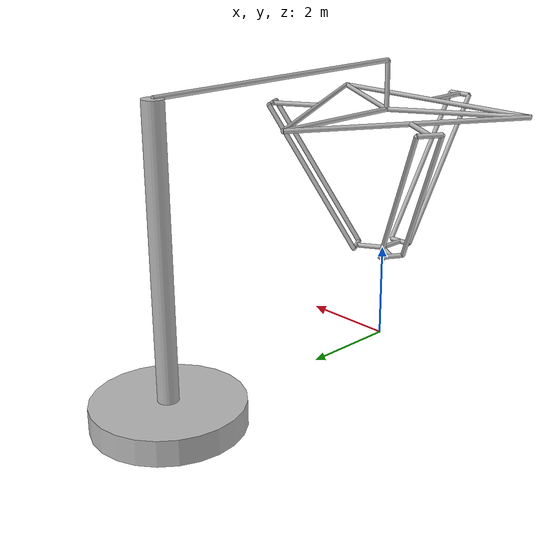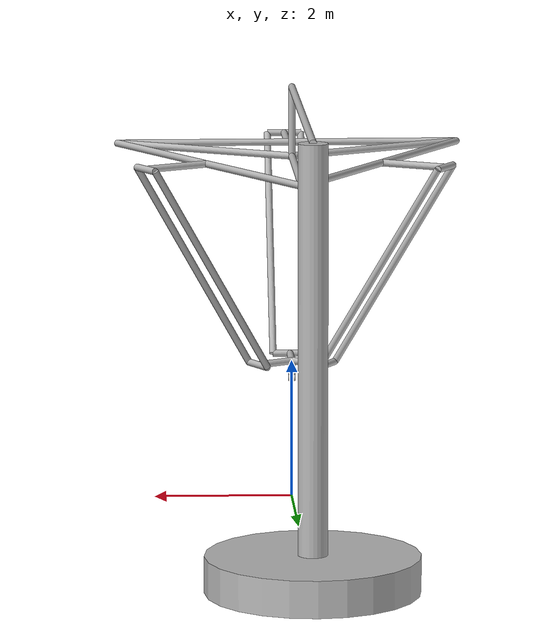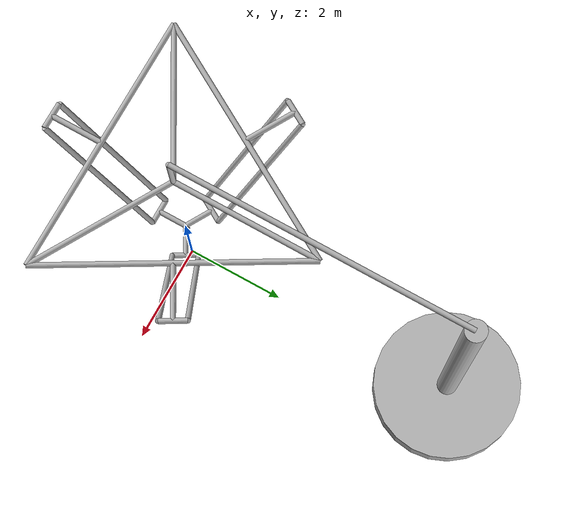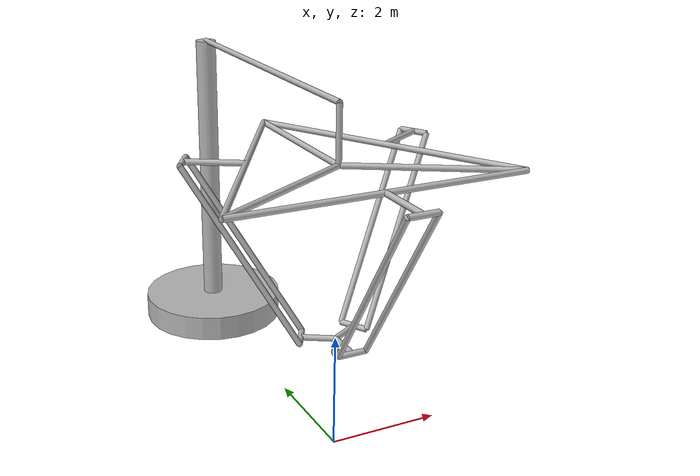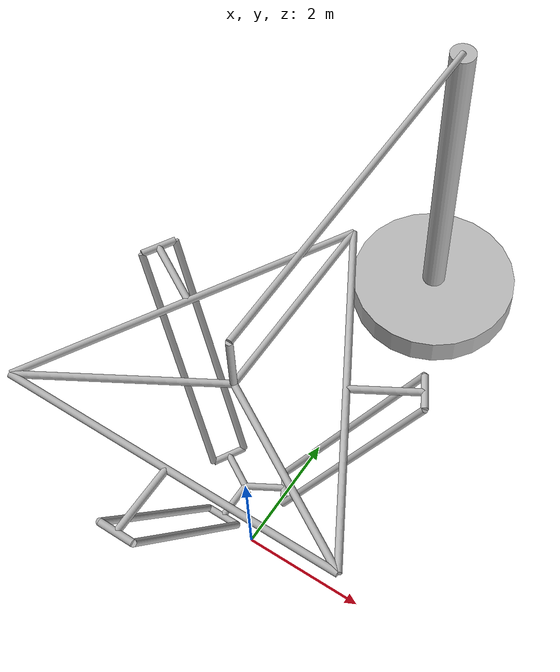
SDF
<?xml version="1.0" ?>
<sdf version="1.5">
<model name="delta3">
    <static>false</static>

    <joint name="fixed_to_ground" type="revolute">
        <parent>world</parent>
        <child>wall</child>
        <axis>
                            <xyz>0 1 0</xyz>
                            <limit>
                                <upper>0</upper>
                                <lower>0</lower>
                            </limit>
                        </axis>
  </joint>
    <link name="upper_side1">
        <pose>0.0 -1.4433756729740643 5.0 0.0 1.5707963267948966 0.0</pose>
        <gravity>0</gravity>
        <inertial>
            <mass>0.1</mass>
            <inertia>
                <ixx>0.0005</ixx>
                <iyy>0.0005</iyy>
                <izz>0.0005</izz>
            </inertia>
        </inertial>
        <collision name="col">
            <geometry>
                <cylinder>
                    <radius>0.05</radius>
                    <length>5</length>
                  </cylinder>
            </geometry>
        </collision>
        <visual name="visual">
            <geometry>
                <cylinder>
                    <radius>0.05</radius>
                    <length>5</length>
                </cylinder>
            </geometry>
          </visual>
    </link>

    <link name="upper_side2">
        <pose>1.25 0.7216878364870318 5.0 0.0 1.5707963267948966 2.0943951023931953</pose>
        <gravity>0</gravity>
        <inertial>
            <mass>0.1</mass>
            <inertia>
                <ixx>0.0005</ixx>
                <iyy>0.0005</iyy>
                <izz>0.0005</izz>
            </inertia>
        </inertial>
        <collision name="col">
            <geometry>
                <cylinder>
                    <radius>0.05</radius>
                    <length>5</length>
                  </cylinder>
            </geometry>
        </collision>
        <visual name="visual">
            <geometry>
                <cylinder>
                    <radius>0.05</radius>
                    <length>5</length>
                </cylinder>
            </geometry>
          </visual>
    </link>

    <link name="upper_side3">
        <pose>-1.25 0.7216878364870318 5.0 0.0 1.5707963267948966 -2.0943951023931953</pose>
        <gravity>0</gravity>
        <inertial>
            <mass>0.1</mass>
            <inertia>
                <ixx>0.0005</ixx>
                <iyy>0.0005</iyy>
                <izz>0.0005</izz>
            </inertia>
        </inertial>
        <collision name="col">
            <geometry>
                <cylinder>
                    <radius>0.05</radius>
                    <length>5</length>
                  </cylinder>
            </geometry>
        </collision>
        <visual name="visual">
            <geometry>
                <cylinder>
                    <radius>0.05</radius>
                    <length>5</length>
                </cylinder>
            </geometry>
          </visual>
    </link>

    <link name="upper_rib1">
        <pose>0.0 1.4433756729740643 5.0 0.0 1.5707963267948966 1.5707963267948966</pose>
        <gravity>0</gravity>
        <inertial>
            <mass>0.1</mass>
            <inertia>
                <ixx>0.0005</ixx>
                <iyy>0.0005</iyy>
                <izz>0.0005</izz>
            </inertia>
        </inertial>
        <collision name="col">
            <geometry>
                <cylinder>
                    <radius>0.05</radius>
                    <length>2.8867513459481287</length>
                  </cylinder>
            </geometry>
        </collision>
        <visual name="visual">
            <geometry>
                <cylinder>
                    <radius>0.05</radius>
                    <length>2.8867513459481287</length>
                </cylinder>
            </geometry>
          </visual>
    </link>

    <link name="upper_rib2">
        <pose>-1.25 -0.7216878364870318 5.0 0.0 1.5707963267948966 0.5235987755982988</pose>
        <gravity>0</gravity>
        <inertial>
            <mass>0.1</mass>
            <inertia>
                <ixx>0.0005</ixx>
                <iyy>0.0005</iyy>
                <izz>0.0005</izz>
            </inertia>
        </inertial>
        <collision name="col">
            <geometry>
                <cylinder>
                    <radius>0.05</radius>
                    <length>2.8867513459481287</length>
                  </cylinder>
            </geometry>
        </collision>
        <visual name="visual">
            <geometry>
                <cylinder>
                    <radius>0.05</radius>
                    <length>2.8867513459481287</length>
                </cylinder>
            </geometry>
          </visual>
    </link>

    <link name="upper_rib3">
        <pose>1.25 -0.7216878364870318 5.0 0.0 1.5707963267948966 -0.5235987755982988</pose>
        <gravity>0</gravity>
        <inertial>
            <mass>0.1</mass>
            <inertia>
                <ixx>0.0005</ixx>
                <iyy>0.0005</iyy>
                <izz>0.0005</izz>
            </inertia>
        </inertial>
        <collision name="col">
            <geometry>
                <cylinder>
                    <radius>0.05</radius>
                    <length>2.8867513459481287</length>
                  </cylinder>
            </geometry>
        </collision>
        <visual name="visual">
            <geometry>
                <cylinder>
                    <radius>0.05</radius>
                    <length>2.8867513459481287</length>
                </cylinder>
            </geometry>
          </visual>
    </link>

    <link name="upper_arm1">
        <pose>0.0 -1.9433756729740643 5.0 1.5707963267948966 1.5707963267948966 0.0</pose>
        <gravity>0</gravity>
        <inertial>
            <mass>0.01</mass>
            <inertia>
                <ixx>0.0005</ixx>
                <iyy>0.0005</iyy>
                <izz>0.0005</izz>
            </inertia>
        </inertial>
        <collision name="col">
            <geometry>
                <cylinder>
                    <radius>0.05</radius>
                    <length>1</length>
                  </cylinder>
            </geometry>
        </collision>
        <visual name="visual">
            <geometry>
                <cylinder>
                    <radius>0.05</radius>
                    <length>1</length>
                </cylinder>
            </geometry>
          </visual>
    </link>

    <link name="upper_arm2">
        <pose>1.6830127018922194 0.9716878364870317 5.0 1.5707963267948966 1.5707963267948966 2.0943951023931953</pose>
        <gravity>0</gravity>
        <inertial>
            <mass>0.01</mass>
            <inertia>
                <ixx>0.0005</ixx>
                <iyy>0.0005</iyy>
                <izz>0.0005</izz>
            </inertia>
        </inertial>
        <collision name="col">
            <geometry>
                <cylinder>
                    <radius>0.05</radius>
                    <length>1</length>
                  </cylinder>
            </geometry>
        </collision>
        <visual name="visual">
            <geometry>
                <cylinder>
                    <radius>0.05</radius>
                    <length>1</length>
                </cylinder>
            </geometry>
          </visual>
    </link>

    <link name="upper_arm3">
        <pose>-1.6830127018922194 0.9716878364870317 5.0 1.5707963267948966 1.5707963267948966 -2.0943951023931953</pose>
        <gravity>0</gravity>
        <inertial>
            <mass>0.01</mass>
            <inertia>
                <ixx>0.0005</ixx>
                <iyy>0.0005</iyy>
                <izz>0.0005</izz>
            </inertia>
        </inertial>
        <collision name="col">
            <geometry>
                <cylinder>
                    <radius>0.05</radius>
                    <length>1</length>
                  </cylinder>
            </geometry>
        </collision>
        <visual name="visual">
            <geometry>
                <cylinder>
                    <radius>0.05</radius>
                    <length>1</length>
                </cylinder>
            </geometry>
          </visual>
    </link>

    <link name="hor_upper_arm1">
        <pose>0.0 -2.4433756729740645 5.0 0.0 1.5707963267948966 0.0</pose>
        <gravity>0</gravity>
        <inertial>
            <mass>0.01</mass>
            <inertia>
                <ixx>0.0005</ixx>
                <iyy>0.0005</iyy>
                <izz>0.0005</izz>
            </inertia>
        </inertial>
        <collision name="col">
            <geometry>
                <cylinder>
                    <radius>0.05</radius>
                    <length>0.5</length>
                  </cylinder>
            </geometry>
        </collision>
        <visual name="visual">
            <geometry>
                <cylinder>
                    <radius>0.05</radius>
                    <length>0.5</length>
                </cylinder>
            </geometry>
          </visual>
    </link>

    <link name="hor_upper_arm2">
        <pose>2.116025403784439 1.2216878364870316 5.0 0.0 1.5707963267948966 2.0943951023931953</pose>
        <gravity>0</gravity>
        <inertial>
            <mass>0.01</mass>
            <inertia>
                <ixx>0.0005</ixx>
                <iyy>0.0005</iyy>
                <izz>0.0005</izz>
            </inertia>
        </inertial>
        <collision name="col">
            <geometry>
                <cylinder>
                    <radius>0.05</radius>
                    <length>0.5</length>
                  </cylinder>
            </geometry>
        </collision>
        <visual name="visual">
            <geometry>
                <cylinder>
                    <radius>0.05</radius>
                    <length>0.5</length>
                </cylinder>
            </geometry>
          </visual>
    </link>

    <link name="hor_upper_arm3">
        <pose>-2.116025403784439 1.2216878364870316 5.0 0.0 1.5707963267948966 -2.0943951023931953</pose>
        <gravity>0</gravity>
        <inertial>
            <mass>0.01</mass>
            <inertia>
                <ixx>0.0005</ixx>
                <iyy>0.0005</iyy>
                <izz>0.0005</izz>
            </inertia>
        </inertial>
        <collision name="col">
            <geometry>
                <cylinder>
                    <radius>0.05</radius>
                    <length>0.5</length>
                  </cylinder>
            </geometry>
        </collision>
        <visual name="visual">
            <geometry>
                <cylinder>
                    <radius>0.05</radius>
                    <length>0.5</length>
                </cylinder>
            </geometry>
          </visual>
    </link>

    <link name="lower_side1">
        <pose>0.0 -0.5773502691896257 2.0 0.0 1.5707963267948966 0.0</pose>
        <gravity>0</gravity>
        <inertial>
            <mass>0.01</mass>
            <inertia>
                <ixx>0.0005</ixx>
                <iyy>0.0005</iyy>
                <izz>0.0005</izz>
            </inertia>
        </inertial>
        <collision name="col">
            <geometry>
                <cylinder>
                    <radius>0.05</radius>
                    <length>0.5</length>
                  </cylinder>
            </geometry>
        </collision>
        <visual name="visual">
            <geometry>
                <cylinder>
                    <radius>0.05</radius>
                    <length>0.5</length>
                </cylinder>
            </geometry>
          </visual>
    </link>

    <link name="lower_side2">
        <pose>0.5 0.28867513459481275 2.0 0.0 1.5707963267948966 2.0943951023931953</pose>
        <gravity>0</gravity>
        <inertial>
            <mass>0.01</mass>
            <inertia>
                <ixx>0.0005</ixx>
                <iyy>0.0005</iyy>
                <izz>0.0005</izz>
            </inertia>
        </inertial>
        <collision name="col">
            <geometry>
                <cylinder>
                    <radius>0.05</radius>
                    <length>0.5</length>
                  </cylinder>
            </geometry>
        </collision>
        <visual name="visual">
            <geometry>
                <cylinder>
                    <radius>0.05</radius>
                    <length>0.5</length>
                </cylinder>
            </geometry>
          </visual>
    </link>

    <link name="lower_side3">
        <pose>-0.5 0.28867513459481275 2.0 0.0 1.5707963267948966 -2.0943951023931953</pose>
        <gravity>0</gravity>
        <inertial>
            <mass>0.01</mass>
            <inertia>
                <ixx>0.0005</ixx>
                <iyy>0.0005</iyy>
                <izz>0.0005</izz>
            </inertia>
        </inertial>
        <collision name="col">
            <geometry>
                <cylinder>
                    <radius>0.05</radius>
                    <length>0.5</length>
                  </cylinder>
            </geometry>
        </collision>
        <visual name="visual">
            <geometry>
                <cylinder>
                    <radius>0.05</radius>
                    <length>0.5</length>
                </cylinder>
            </geometry>
          </visual>
    </link>

    <link name="lower_rib1">
        <pose>0.0 -0.28867513459481287 2.0 1.5707963267948966 1.5707963267948966 0.0</pose>
        <gravity>0</gravity>
        <inertial>
            <mass>0.01</mass>
            <inertia>
                <ixx>0.0005</ixx>
                <iyy>0.0005</iyy>
                <izz>0.0005</izz>
            </inertia>
        </inertial>
        <collision name="col">
            <geometry>
                <cylinder>
                    <radius>0.05</radius>
                    <length>0.5773502691896257</length>
                  </cylinder>
            </geometry>
        </collision>
        <visual name="visual">
            <geometry>
                <cylinder>
                    <radius>0.05</radius>
                    <length>0.5773502691896257</length>
                </cylinder>
            </geometry>
          </visual>
    </link>

    <link name="lower_rib2">
        <pose>0.25 0.14433756729740638 2.0 1.5707963267948966 1.5707963267948966 2.0943951023931953</pose>
        <gravity>0</gravity>
        <inertial>
            <mass>0.01</mass>
            <inertia>
                <ixx>0.0005</ixx>
                <iyy>0.0005</iyy>
                <izz>0.0005</izz>
            </inertia>
        </inertial>
        <collision name="col">
            <geometry>
                <cylinder>
                    <radius>0.05</radius>
                    <length>0.5773502691896257</length>
                  </cylinder>
            </geometry>
        </collision>
        <visual name="visual">
            <geometry>
                <cylinder>
                    <radius>0.05</radius>
                    <length>0.5773502691896257</length>
                </cylinder>
            </geometry>
          </visual>
    </link>

    <link name="lower_rib3">
        <pose>-0.25 0.14433756729740638 2.0 1.5707963267948966 1.5707963267948966 -2.0943951023931953</pose>
        <gravity>0</gravity>
        <inertial>
            <mass>0.01</mass>
            <inertia>
                <ixx>0.0005</ixx>
                <iyy>0.0005</iyy>
                <izz>0.0005</izz>
            </inertia>
        </inertial>
        <collision name="col">
            <geometry>
                <cylinder>
                    <radius>0.05</radius>
                    <length>0.5773502691896257</length>
                  </cylinder>
            </geometry>
        </collision>
        <visual name="visual">
            <geometry>
                <cylinder>
                    <radius>0.05</radius>
                    <length>0.5773502691896257</length>
                </cylinder>
            </geometry>
          </visual>
    </link>

    <link name="vertical_arm1_left">
        <pose>0.25 -1.5103629710818451 3.5 0.556445208381 0.0 0.0</pose>
        <gravity>0</gravity>
        <inertial>
            <mass>0.01</mass>
            <inertia>
                <ixx>0.0005</ixx>
                <iyy>0.0005</iyy>
                <izz>0.0005</izz>
            </inertia>
        </inertial>
        <collision name="col">
            <geometry>
                <cylinder>
                    <radius>0.05</radius>
                    <length>3.532994594896641</length>
                  </cylinder>
            </geometry>
        </collision>
        <visual name="visual">
            <geometry>
                <cylinder>
                    <radius>0.05</radius>
                    <length>3.532994594896641</length>
                </cylinder>
            </geometry>
          </visual>
    </link>

    <link name="vertical_arm2_left">
        <pose>1.1830127018922194 0.9716878364870319 3.5 0.5564452083809998 0.0 2.0943951023931953</pose>
        <gravity>0</gravity>
        <inertial>
            <mass>0.01</mass>
            <inertia>
                <ixx>0.0005</ixx>
                <iyy>0.0005</iyy>
                <izz>0.0005</izz>
            </inertia>
        </inertial>
        <collision name="col">
            <geometry>
                <cylinder>
                    <radius>0.05</radius>
                    <length>3.532994594896641</length>
                  </cylinder>
            </geometry>
        </collision>
        <visual name="visual">
            <geometry>
                <cylinder>
                    <radius>0.05</radius>
                    <length>3.532994594896641</length>
                </cylinder>
            </geometry>
          </visual>
    </link>

    <link name="vertical_arm3_left">
        <pose>-1.4330127018922194 0.5386751345948126 3.5 0.5564452083809998 0.0 -2.0943951023931953</pose>
        <gravity>0</gravity>
        <inertial>
            <mass>0.01</mass>
            <inertia>
                <ixx>0.0005</ixx>
                <iyy>0.0005</iyy>
                <izz>0.0005</izz>
            </inertia>
        </inertial>
        <collision name="col">
            <geometry>
                <cylinder>
                    <radius>0.05</radius>
                    <length>3.532994594896641</length>
                  </cylinder>
            </geometry>
        </collision>
        <visual name="visual">
            <geometry>
                <cylinder>
                    <radius>0.05</radius>
                    <length>3.532994594896641</length>
                </cylinder>
            </geometry>
          </visual>
    </link>

    <link name="vertical_arm1_right">
        <pose>-0.25 -1.5103629710818451 3.5 0.556445208381 0.0 0.0</pose>
        <gravity>0</gravity>
        <inertial>
            <mass>0.01</mass>
            <inertia>
                <ixx>0.0005</ixx>
                <iyy>0.0005</iyy>
                <izz>0.0005</izz>
            </inertia>
        </inertial>
        <collision name="col">
            <geometry>
                <cylinder>
                    <radius>0.05</radius>
                    <length>3.532994594896641</length>
                  </cylinder>
            </geometry>
        </collision>
        <visual name="visual">
            <geometry>
                <cylinder>
                    <radius>0.05</radius>
                    <length>3.532994594896641</length>
                </cylinder>
            </geometry>
          </visual>
    </link>

    <link name="vertical_arm2_right">
        <pose>1.4330127018922194 0.5386751345948125 3.5 0.5564452083809998 0.0 2.0943951023931953</pose>
        <gravity>0</gravity>
        <inertial>
            <mass>0.01</mass>
            <inertia>
                <ixx>0.0005</ixx>
                <iyy>0.0005</iyy>
                <izz>0.0005</izz>
            </inertia>
        </inertial>
        <collision name="col">
            <geometry>
                <cylinder>
                    <radius>0.05</radius>
                    <length>3.532994594896641</length>
                  </cylinder>
            </geometry>
        </collision>
        <visual name="visual">
            <geometry>
                <cylinder>
                    <radius>0.05</radius>
                    <length>3.532994594896641</length>
                </cylinder>
            </geometry>
          </visual>
    </link>

    <link name="vertical_arm3_right">
        <pose>-1.1830127018922194 0.9716878364870318 3.5 0.5564452083809998 0.0 -2.0943951023931953</pose>
        <gravity>0</gravity>
        <inertial>
            <mass>0.01</mass>
            <inertia>
                <ixx>0.0005</ixx>
                <iyy>0.0005</iyy>
                <izz>0.0005</izz>
            </inertia>
        </inertial>
        <collision name="col">
            <geometry>
                <cylinder>
                    <radius>0.05</radius>
                    <length>3.532994594896641</length>
                  </cylinder>
            </geometry>
        </collision>
        <visual name="visual">
            <geometry>
                <cylinder>
                    <radius>0.05</radius>
                    <length>3.532994594896641</length>
                </cylinder>
            </geometry>
          </visual>
    </link>

    <link name="upper_triangle_holder">
        <pose>0 0 5.5 0 0 0</pose>
        <gravity>0</gravity>
        <inertial>
            <mass>0.1</mass>
            <inertia>
                <ixx>0.0005</ixx>
                <iyy>0.0005</iyy>
                <izz>0.0005</izz>
            </inertia>
        </inertial>
        <collision name="col">
            <geometry>
                <cylinder>
                    <radius>0.05</radius>
                    <length>1</length>
                  </cylinder>
            </geometry>
        </collision>
        <visual name="visual">
            <geometry>
                <cylinder>
                    <radius>0.05</radius>
                    <length>1</length>
                </cylinder>
            </geometry>
          </visual>
    </link>

    <link name="lower_triangle_holder">
        <pose>0 0 1.9 0 0 0</pose>
        <gravity>0</gravity>
        <inertial>
            <mass>0.01</mass>
            <inertia>
                <ixx>0.0005</ixx>
                <iyy>0.0005</iyy>
                <izz>0.0005</izz>
            </inertia>
        </inertial>
        <collision name="col">
            <geometry>
                <cylinder>
                    <radius>0.05</radius>
                    <length>0.2</length>
                  </cylinder>
            </geometry>
        </collision>
        <visual name="visual">
            <geometry>
                <cylinder>
                    <radius>0.05</radius>
                    <length>0.2</length>
                </cylinder>
            </geometry>
          </visual>
    </link>

    <link name="horizontal_holder">
        <pose>0 2.8867513459481287 6 1.5707963267948966 0 0</pose>
        <gravity>0</gravity>
        <inertial>
            <mass>0.1</mass>
            <inertia>
                <ixx>1.0</ixx>
                <iyy>1.0</iyy>
                <izz>1.0</izz>
            </inertia>
        </inertial>
        <collision name="col">
            <geometry>
                <cylinder>
                    <radius>0.05</radius>
                    <length>5.773502691896257</length>
                  </cylinder>
            </geometry>
        </collision>
        <visual name="visual">
            <geometry>
                <cylinder>
                    <radius>0.05</radius>
                    <length>5.773502691896257</length>
                </cylinder>
            </geometry>
          </visual>
    </link>

    <link name="wall">
        <pose>0 5.773502691896257 0.25 0 0 0</pose>
        <inertial>
            <mass>500</mass>
        </inertial>
        <collision name="col">
            <geometry>
                <cylinder>
                    <radius>1.4433756729740643</radius>
                    <length>0.5</length>
                  </cylinder>
            </geometry>
        </collision>
        <visual name="visual">
            <geometry>
                <cylinder>
                    <radius>1.4433756729740643</radius>
                    <length>0.5</length>
                </cylinder>
            </geometry>
          </visual>
    </link>

    <link name="main_holder">
        <pose>0 5.773502691896257 3.25 0 0 0</pose>
        <gravity>0</gravity>
        <inertial>
            <mass>0.1</mass>
            <inertia>
                <ixx>1.0</ixx>
                <iyy>1.0</iyy>
                <izz>1.0</izz>
            </inertia>
        </inertial>
        <collision name="col">
            <geometry>
                <cylinder>
                    <radius>0.2</radius>
                    <length>5.5</length>
                  </cylinder>
            </geometry>
        </collision>
        <visual name="visual">
            <geometry>
                <cylinder>
                    <radius>0.2</radius>
                    <length>5.5</length>
                </cylinder>
            </geometry>
          </visual>
    </link>

    <link name="camera_link">
        <inertial>
                <mass>0.01</mass>
                <inertia>
                    <ixx>0.0005</ixx>
                    <iyy>0.0005</iyy>
                    <izz>0.0005</izz>
                </inertia>
        </inertial>
        <pose>0 0 1.7499999999999998 0 1.5707963267948966 0</pose>
        <visual name="visual">
            <geometry>
                <cylinder>
                    <radius>0.05</radius>
                    <length>0.1</length>
                </cylinder>
            </geometry>
        </visual>
        <collision name="col">
            <geometry>
                <cylinder>
                    <radius>0.05</radius>
                    <length>0.1</length>
                </cylinder>
            </geometry>
        </collision>
        <sensor type="camera" name="camera1">
            <update_rate>30.0</update_rate>
            <camera name="head">
                <horizontal_fov>1.3962634</horizontal_fov>
                <image>
                    <width>800</width>
                    <height>800</height>
                    <format>R8G8B8</format>
                </image>
                <clip>
                    <near>0.02</near>
                    <far>10</far>
                </clip>
            </camera>
            <always_on>1</always_on>
            <visualize>1</visualize>
            <plugin name="camera_controller" filename="libgazebo_ros_camera.so">
                <alwaysOn>true</alwaysOn>
                <updateRate>0.0</updateRate>
                <cameraName>delta3/camera</cameraName>
                <imageTopicName>raw_image</imageTopicName>
                <cameraInfoTopicName>camera_info</cameraInfoTopicName>
                <frameName>camera_link</frameName>
            </plugin>
        </sensor>
    </link>
    <joint type="revolute" name="upper_s2_s1">
                    <pose>0 0 2.5 0 0 0</pose>
                    <child>upper_side2</child>
                    <parent>upper_side1</parent>
                        <axis>
                            <dynamics>
                                <friction>1.0</friction>
                                <damping>.1</damping>
                            </dynamics>
                            <xyz>0 0 1</xyz>
                            <limit>
                                <upper>0</upper>
                                <lower>0</lower>
                            </limit>
                        </axis>
			    </joint>
            <joint type="revolute" name="upper_s2_s3">
                    <pose>0 0 -2.5 0 0 0</pose>
                    <child>upper_side2</child>
                    <parent>upper_side3</parent>
                        <axis>
                            <dynamics>
                                <friction>1.0</friction>
                                <damping>.1</damping>
                            </dynamics>
                            <xyz>0 0 1</xyz>
                            <limit>
                                <upper>0</upper>
                                <lower>0</lower>
                            </limit>
                        </axis>
			    </joint>
            <joint type="revolute" name="upper_s3_s1">
                    <pose>0 0 2.5 0 0 0</pose>
                    <child>upper_side3</child>
                    <parent>upper_side1</parent>
                        <axis>
                            <dynamics>
                                <friction>1.0</friction>
                                <damping>.1</damping>
                            </dynamics>
                            <xyz>0 0 1</xyz>
                            <limit>
                                <upper>0</upper>
                                <lower>0</lower>
                            </limit>
                        </axis>
			    </joint>
            <joint type="revolute" name="upper_arm_a1_s1">
                    <pose>0 0 -0.5 0 0 0</pose>
                    <child>upper_arm1</child>
                    <parent>upper_side1</parent>
                        <axis>
                            <dynamics>
                                <friction>1.0</friction>
                                <damping>.1</damping>
                            </dynamics>
                            <xyz>0 1 0</xyz>
                            <limit>
                                <upper>1.5707963267948966</upper>
                                <lower>-1.5707963267948966</lower>
                            </limit>
                        </axis>
			    </joint>
            <joint type="revolute" name="upper_arm_a2_s2">
                    <pose>0 0 -0.5 0 0 0</pose>
                    <child>upper_arm2</child>
                    <parent>upper_side2</parent>
                        <axis>
                            <dynamics>
                                <friction>1.0</friction>
                                <damping>.1</damping>
                            </dynamics>
                            <xyz>0 1 0</xyz>
                            <limit>
                                <upper>1.5707963267948966</upper>
                                <lower>-1.5707963267948966</lower>
                            </limit>
                        </axis>
			    </joint>
            <joint type="revolute" name="upper_arm_a3_s3">
                    <pose>0 0 -0.5 0 0 0</pose>
                    <child>upper_arm3</child>
                    <parent>upper_side3</parent>
                        <axis>
                            <dynamics>
                                <friction>1.0</friction>
                                <damping>.1</damping>
                            </dynamics>
                            <xyz>0 1 0</xyz>
                            <limit>
                                <upper>1.5707963267948966</upper>
                                <lower>-1.5707963267948966</lower>
                            </limit>
                        </axis>
			    </joint>
            <joint type="revolute" name="upper_arm_hor_a1_s1">
                    <pose>0 0 0.5 0 0 0</pose>
                    <child>upper_arm1</child>
                    <parent>hor_upper_arm1</parent>
                        <axis>
                            <dynamics>
                                <friction>1.0</friction>
                                <damping>.1</damping>
                            </dynamics>
                            <xyz>0 1 0</xyz>
                            <limit>
                                <upper>1.5707963267948966</upper>
                                <lower>-1.5707963267948966</lower>
                            </limit>
                        </axis>
			    </joint>
            <joint type="revolute" name="upper_arm_hor_a2_s2">
                    <pose>0 0 0.5 0 0 0</pose>
                    <child>upper_arm2</child>
                    <parent>hor_upper_arm2</parent>
                        <axis>
                            <dynamics>
                                <friction>1.0</friction>
                                <damping>.1</damping>
                            </dynamics>
                            <xyz>0 1 0</xyz>
                            <limit>
                                <upper>1.5707963267948966</upper>
                                <lower>-1.5707963267948966</lower>
                            </limit>
                        </axis>
			    </joint>
            <joint type="revolute" name="upper_arm_hor_a3_s3">
                    <pose>0 0 0.5 0 0 0</pose>
                    <child>upper_arm3</child>
                    <parent>hor_upper_arm3</parent>
                        <axis>
                            <dynamics>
                                <friction>1.0</friction>
                                <damping>.1</damping>
                            </dynamics>
                            <xyz>0 1 0</xyz>
                            <limit>
                                <upper>1.5707963267948966</upper>
                                <lower>-1.5707963267948966</lower>
                            </limit>
                        </axis>
			    </joint>
            <joint type="ball" name="vertical_arm_a1_v1_right">
                    <pose>0 0 1.7664972974483204 0 0 0</pose>
                    <child>vertical_arm1_right</child>
                    <parent>hor_upper_arm1</parent>
                        <axis>
                            <dynamics>
                                <friction>1.0</friction>
                                <damping>.1</damping>
                            </dynamics>
                            <xyz>0 1 0</xyz>
                            <limit>
                                <upper>1.5707963267948966</upper>
                                <lower>-1.5707963267948966</lower>
                            </limit>
                        </axis>
			    </joint>
            <joint type="ball" name="vertical_arm_a2_v2_right">
                    <pose>0 0 1.7664972974483204 0 0 0</pose>
                    <child>vertical_arm2_right</child>
                    <parent>hor_upper_arm2</parent>
                        <axis>
                            <dynamics>
                                <friction>1.0</friction>
                                <damping>.1</damping>
                            </dynamics>
                            <xyz>0 1 0</xyz>
                            <limit>
                                <upper>1.5707963267948966</upper>
                                <lower>-1.5707963267948966</lower>
                            </limit>
                        </axis>
			    </joint>
            <joint type="ball" name="vertical_arm_a3_v3_right">
                    <pose>0 0 1.7664972974483204 0 0 0</pose>
                    <child>vertical_arm3_right</child>
                    <parent>hor_upper_arm3</parent>
                        <axis>
                            <dynamics>
                                <friction>1.0</friction>
                                <damping>.1</damping>
                            </dynamics>
                            <xyz>0 1 0</xyz>
                            <limit>
                                <upper>1.5707963267948966</upper>
                                <lower>-1.5707963267948966</lower>
                            </limit>
                        </axis>
			    </joint>
            <joint type="ball" name="vertical_arm_a1_v1_left">
                    <pose>0 0 1.7664972974483204 0 0 0</pose>
                    <child>vertical_arm1_left</child>
                    <parent>hor_upper_arm1</parent>
                        <axis>
                            <dynamics>
                                <friction>1.0</friction>
                                <damping>.1</damping>
                            </dynamics>
                            <xyz>0 1 0</xyz>
                            <limit>
                                <upper>1.5707963267948966</upper>
                                <lower>-1.5707963267948966</lower>
                            </limit>
                        </axis>
			    </joint>
            <joint type="ball" name="vertical_arm_a2_v2_left">
                    <pose>0 0 1.7664972974483204 0 0 0</pose>
                    <child>vertical_arm2_left</child>
                    <parent>hor_upper_arm2</parent>
                        <axis>
                            <dynamics>
                                <friction>1.0</friction>
                                <damping>.1</damping>
                            </dynamics>
                            <xyz>0 1 0</xyz>
                            <limit>
                                <upper>1.5707963267948966</upper>
                                <lower>-1.5707963267948966</lower>
                            </limit>
                        </axis>
			    </joint>
            <joint type="ball" name="vertical_arm_a3_v3_left">
                    <pose>0 0 1.7664972974483204 0 0 0</pose>
                    <child>vertical_arm3_left</child>
                    <parent>hor_upper_arm3</parent>
                        <axis>
                            <dynamics>
                                <friction>1.0</friction>
                                <damping>.1</damping>
                            </dynamics>
                            <xyz>0 1 0</xyz>
                            <limit>
                                <upper>1.5707963267948966</upper>
                                <lower>-1.5707963267948966</lower>
                            </limit>
                        </axis>
			    </joint>
            <joint type="ball" name="lvertical_arm_a1_v1_right">
                    <pose>0 0 -1.7664972974483204 0 0 0</pose>
                    <child>vertical_arm1_right</child>
                    <parent>lower_side1</parent>
                        <axis>
                            <dynamics>
                                <friction>1.0</friction>
                                <damping>.1</damping>
                            </dynamics>
                            <xyz>0 1 0</xyz>
                            <limit>
                                <upper>1.5707963267948966</upper>
                                <lower>-1.5707963267948966</lower>
                            </limit>
                        </axis>
			    </joint>
            <joint type="ball" name="lvertical_arm_a2_v2_right">
                    <pose>0 0 -1.7664972974483204 0 0 0</pose>
                    <child>vertical_arm2_right</child>
                    <parent>lower_side2</parent>
                        <axis>
                            <dynamics>
                                <friction>1.0</friction>
                                <damping>.1</damping>
                            </dynamics>
                            <xyz>0 1 0</xyz>
                            <limit>
                                <upper>1.5707963267948966</upper>
                                <lower>-1.5707963267948966</lower>
                            </limit>
                        </axis>
			    </joint>
            <joint type="ball" name="lvertical_arm_a3_v3_right">
                    <pose>0 0 -1.7664972974483204 0 0 0</pose>
                    <child>vertical_arm3_right</child>
                    <parent>lower_side3</parent>
                        <axis>
                            <dynamics>
                                <friction>1.0</friction>
                                <damping>.1</damping>
                            </dynamics>
                            <xyz>0 1 0</xyz>
                            <limit>
                                <upper>1.5707963267948966</upper>
                                <lower>-1.5707963267948966</lower>
                            </limit>
                        </axis>
			    </joint>
            <joint type="ball" name="lvertical_arm_a1_v1_left">
                    <pose>0 0 -1.7664972974483204 0 0 0</pose>
                    <child>vertical_arm1_left</child>
                    <parent>lower_side1</parent>
                        <axis>
                            <dynamics>
                                <friction>1.0</friction>
                                <damping>.1</damping>
                            </dynamics>
                            <xyz>0 1 0</xyz>
                            <limit>
                                <upper>1.5707963267948966</upper>
                                <lower>-1.5707963267948966</lower>
                            </limit>
                        </axis>
			    </joint>
            <joint type="ball" name="lvertical_arm_a2_v2_left">
                    <pose>0 0 -1.7664972974483204 0 0 0</pose>
                    <child>vertical_arm2_left</child>
                    <parent>lower_side2</parent>
                        <axis>
                            <dynamics>
                                <friction>1.0</friction>
                                <damping>.1</damping>
                            </dynamics>
                            <xyz>0 1 0</xyz>
                            <limit>
                                <upper>1.5707963267948966</upper>
                                <lower>-1.5707963267948966</lower>
                            </limit>
                        </axis>
			    </joint>
            <joint type="ball" name="lvertical_arm_a3_v3_left">
                    <pose>0 0 -1.7664972974483204 0 0 0</pose>
                    <child>vertical_arm3_left</child>
                    <parent>lower_side3</parent>
                        <axis>
                            <dynamics>
                                <friction>1.0</friction>
                                <damping>.1</damping>
                            </dynamics>
                            <xyz>0 1 0</xyz>
                            <limit>
                                <upper>1.5707963267948966</upper>
                                <lower>-1.5707963267948966</lower>
                            </limit>
                        </axis>
			    </joint>
            <joint type="revolute" name="upper_rib1_s1">
                    <pose>0 0 1.4433756729740643 0 0 0</pose>
                    <child>upper_rib1</child>
                    <parent>upper_side1</parent>
                        <axis>
                            <dynamics>
                                <friction>1.0</friction>
                                <damping>.1</damping>
                            </dynamics>
                            <xyz>1 0 0</xyz>
                            <limit>
                                <upper>0</upper>
                                <lower>0</lower>
                            </limit>
                        </axis>
			    </joint>
            <joint type="revolute" name="upper_rib2_s2">
                    <pose>0 0 -1.4433756729740643 0 0 0</pose>
                    <child>upper_rib2</child>
                    <parent>upper_side2</parent>
                        <axis>
                            <dynamics>
                                <friction>1.0</friction>
                                <damping>.1</damping>
                            </dynamics>
                            <xyz>1 0 0</xyz>
                            <limit>
                                <upper>0</upper>
                                <lower>0</lower>
                            </limit>
                        </axis>
			    </joint>
            <joint type="revolute" name="upper_rib3_s3">
                    <pose>0 0 1.4433756729740643 0 0 0</pose>
                    <child>upper_rib3</child>
                    <parent>upper_side3</parent>
                        <axis>
                            <dynamics>
                                <friction>1.0</friction>
                                <damping>.1</damping>
                            </dynamics>
                            <xyz>1 0 0</xyz>
                            <limit>
                                <upper>0</upper>
                                <lower>0</lower>
                            </limit>
                        </axis>
			    </joint>
            <joint type="revolute" name="upper_rib1_holder">
                    <pose>0 0 -1.4433756729740643 0 0 0</pose>
                    <child>upper_rib1</child>
                    <parent>upper_triangle_holder</parent>
                        <axis>
                            <dynamics>
                                <friction>1.0</friction>
                                <damping>.1</damping>
                            </dynamics>
                            <xyz>1 0 0</xyz>
                            <limit>
                                <upper>0</upper>
                                <lower>0</lower>
                            </limit>
                        </axis>
			    </joint>
            <joint type="revolute" name="upper_rib2_holder">
                    <pose>0 0 1.4433756729740643 0 0 0</pose>
                    <child>upper_rib2</child>
                    <parent>upper_triangle_holder</parent>
                        <axis>
                            <dynamics>
                                <friction>1.0</friction>
                                <damping>.1</damping>
                            </dynamics>
                            <xyz>1 0 0</xyz>
                            <limit>
                                <upper>0</upper>
                                <lower>0</lower>
                            </limit>
                        </axis>
			    </joint>
            <joint type="revolute" name="upper_rib3_holder">
                    <pose>0 0 -1.4433756729740643 0 0 0</pose>
                    <child>upper_rib3</child>
                    <parent>upper_triangle_holder</parent>
                        <axis>
                            <dynamics>
                                <friction>1.0</friction>
                                <damping>.1</damping>
                            </dynamics>
                            <xyz>1 0 0</xyz>
                            <limit>
                                <upper>0</upper>
                                <lower>0</lower>
                            </limit>
                        </axis>
			    </joint>
            <joint type="revolute" name="lower_rib1_s1">
                    <pose>0 0 0 0 0 0</pose>
                    <child>lower_side1</child>
                    <parent>lower_rib1</parent>
                        <axis>
                            <dynamics>
                                <friction>1.0</friction>
                                <damping>.1</damping>
                            </dynamics>
                            <xyz>0 1 0</xyz>
                            <limit>
                                <upper>0</upper>
                                <lower>0</lower>
                            </limit>
                        </axis>
			    </joint>
            <joint type="revolute" name="lower_rib2_s2">
                    <pose>0 0 0 0 0 0</pose>
                    <child>lower_side2</child>
                    <parent>lower_rib2</parent>
                        <axis>
                            <dynamics>
                                <friction>1.0</friction>
                                <damping>.1</damping>
                            </dynamics>
                            <xyz>0 1 0</xyz>
                            <limit>
                                <upper>0</upper>
                                <lower>0</lower>
                            </limit>
                        </axis>
			    </joint>
            <joint type="revolute" name="lower_rib3_s3">
                    <pose>0 0 0 0 0 0</pose>
                    <child>lower_side3</child>
                    <parent>lower_rib3</parent>
                        <axis>
                            <dynamics>
                                <friction>1.0</friction>
                                <damping>.1</damping>
                            </dynamics>
                            <xyz>0 1 0</xyz>
                            <limit>
                                <upper>0</upper>
                                <lower>0</lower>
                            </limit>
                        </axis>
			    </joint>
            <joint type="revolute" name="lower_rib1_holder">
                    <pose>0 0 -0.28867513459481287 0 0 0</pose>
                    <child>lower_rib1</child>
                    <parent>lower_triangle_holder</parent>
                        <axis>
                            <dynamics>
                                <friction>1.0</friction>
                                <damping>.1</damping>
                            </dynamics>
                            <xyz>1 0 0</xyz>
                            <limit>
                                <upper>0</upper>
                                <lower>0</lower>
                            </limit>
                        </axis>
			    </joint>
            <joint type="revolute" name="lower_rib2_holder">
                    <pose>0 0 -0.28867513459481287 0 0 0</pose>
                    <child>lower_rib2</child>
                    <parent>lower_triangle_holder</parent>
                        <axis>
                            <dynamics>
                                <friction>1.0</friction>
                                <damping>.1</damping>
                            </dynamics>
                            <xyz>1 0 0</xyz>
                            <limit>
                                <upper>0</upper>
                                <lower>0</lower>
                            </limit>
                        </axis>
			    </joint>
            <joint type="revolute" name="lower_rib3_holder">
                    <pose>0 0 -0.28867513459481287 0 0 0</pose>
                    <child>lower_rib3</child>
                    <parent>lower_triangle_holder</parent>
                        <axis>
                            <dynamics>
                                <friction>1.0</friction>
                                <damping>.1</damping>
                            </dynamics>
                            <xyz>1 0 0</xyz>
                            <limit>
                                <upper>0</upper>
                                <lower>0</lower>
                            </limit>
                        </axis>
			    </joint>
            <joint type="revolute" name="lower_rib12">
                    <pose>0 0 -0.28867513459481287 0 0 0</pose>
                    <child>lower_rib1</child>
                    <parent>lower_rib1</parent>
                        <axis>
                            <dynamics>
                                <friction>1.0</friction>
                                <damping>.1</damping>
                            </dynamics>
                            <xyz>1 0 0</xyz>
                            <limit>
                                <upper>0</upper>
                                <lower>0</lower>
                            </limit>
                        </axis>
			    </joint>
            <joint type="revolute" name="lower_rib32">
                    <pose>0 0 -0.28867513459481287 0 0 0</pose>
                    <child>lower_rib2</child>
                    <parent>lower_rib3</parent>
                        <axis>
                            <dynamics>
                                <friction>1.0</friction>
                                <damping>.1</damping>
                            </dynamics>
                            <xyz>1 0 0</xyz>
                            <limit>
                                <upper>0</upper>
                                <lower>0</lower>
                            </limit>
                        </axis>
			    </joint>
            <joint type="revolute" name="lower_rib13">
                    <pose>0 0 -0.28867513459481287 0 0 0</pose>
                    <child>lower_rib3</child>
                    <parent>lower_rib1</parent>
                        <axis>
                            <dynamics>
                                <friction>1.0</friction>
                                <damping>.1</damping>
                            </dynamics>
                            <xyz>1 0 0</xyz>
                            <limit>
                                <upper>0</upper>
                                <lower>0</lower>
                            </limit>
                        </axis>
			    </joint>
            <joint type="revolute" name="u_tria_v_h_holder">
                    <pose>0 0 0.5 0 0 0</pose>
                    <child>upper_triangle_holder</child>
                    <parent>horizontal_holder</parent>
                        <axis>
                            <dynamics>
                                <friction>1.0</friction>
                                <damping>.1</damping>
                            </dynamics>
                            <xyz>1 0 0</xyz>
                            <limit>
                                <upper>0</upper>
                                <lower>0</lower>
                            </limit>
                        </axis>
			    </joint>
            <joint type="revolute" name="h_v_holder">
                    <pose>0 0 -2.8867513459481287 0 0 0</pose>
                    <child>horizontal_holder</child>
                    <parent>main_holder</parent>
                        <axis>
                            <dynamics>
                                <friction>1.0</friction>
                                <damping>.1</damping>
                            </dynamics>
                            <xyz>1 0 0</xyz>
                            <limit>
                                <upper>0</upper>
                                <lower>0</lower>
                            </limit>
                        </axis>
			    </joint>
            <joint type="revolute" name="v_wall_holder">
                    <pose>0 0 -2.75 0 0 0</pose>
                    <child>main_holder</child>
                    <parent>wall</parent>
                        <axis>
                            <dynamics>
                                <friction>1.0</friction>
                                <damping>.1</damping>
                            </dynamics>
                            <xyz>1 0 0</xyz>
                            <limit>
                                <upper>0</upper>
                                <lower>0</lower>
                            </limit>
                        </axis>
			    </joint>
            <joint type="revolute" name="camera_joint">
                    <pose>0 0 0 0 0 0</pose>
                    <child>camera_link</child>
                    <parent>lower_triangle_holder</parent>
                        <axis>
                            <dynamics>
                                <friction>1.0</friction>
                                <damping>.1</damping>
                            </dynamics>
                            <xyz>1 0 0</xyz>
                            <limit>
                                <upper>0</upper>
                                <lower>0</lower>
                            </limit>
                        </axis>
			    </joint>

        <plugin name="arm_control" filename="libdelta3_gazebo.so" />

</model>
</sdf>
